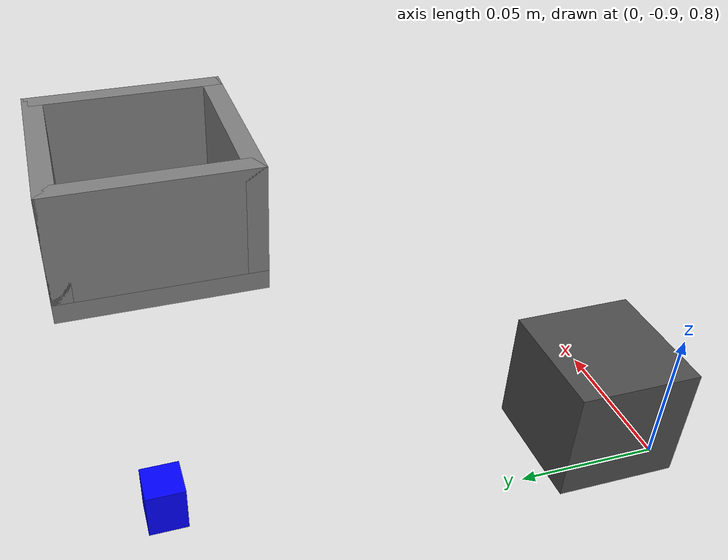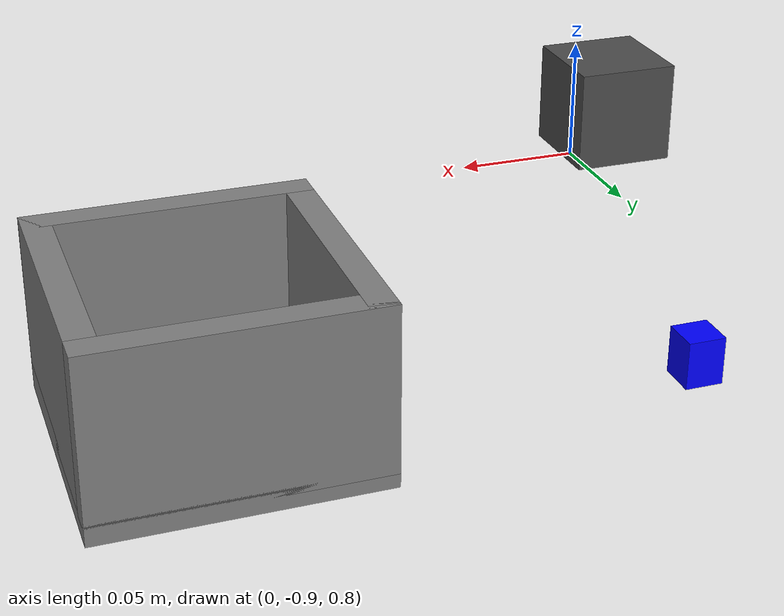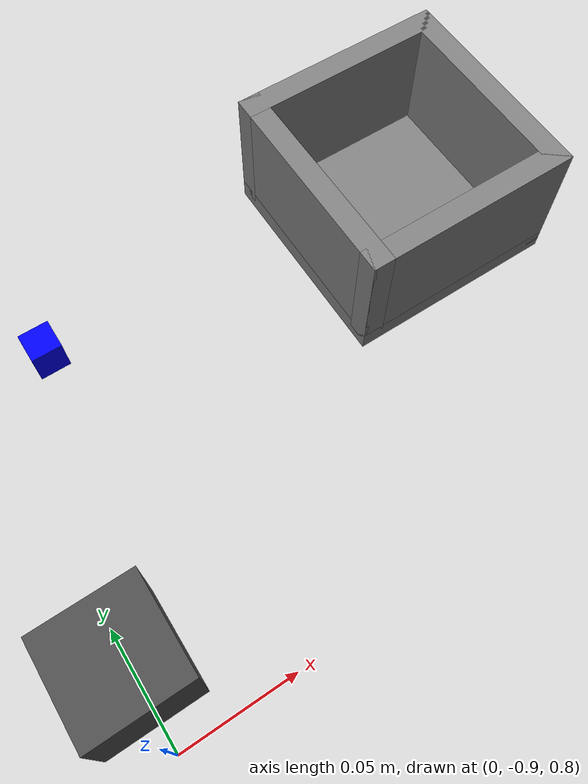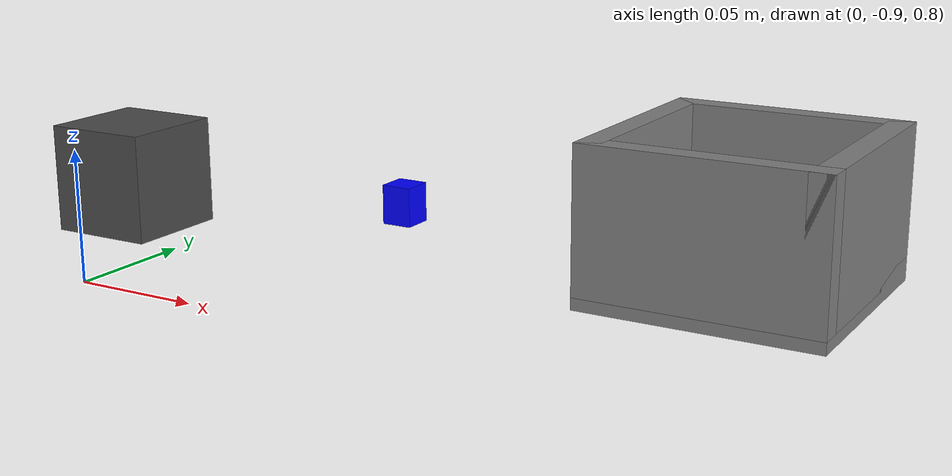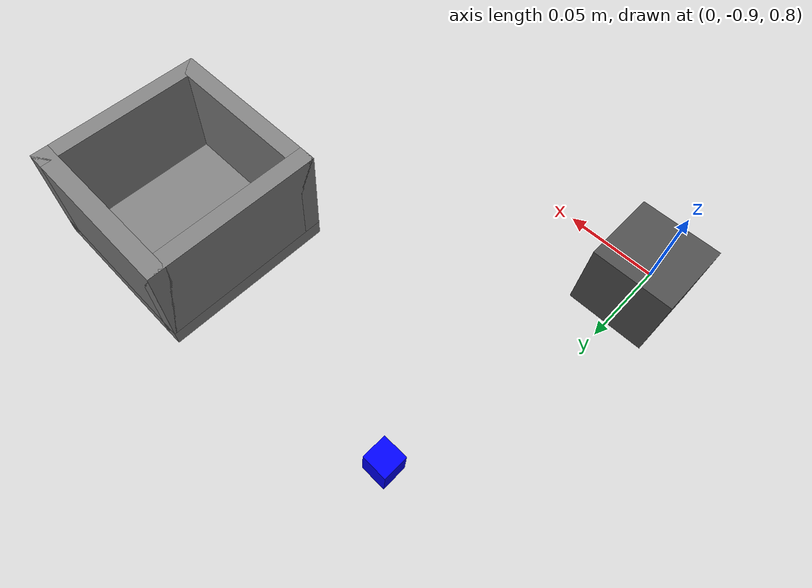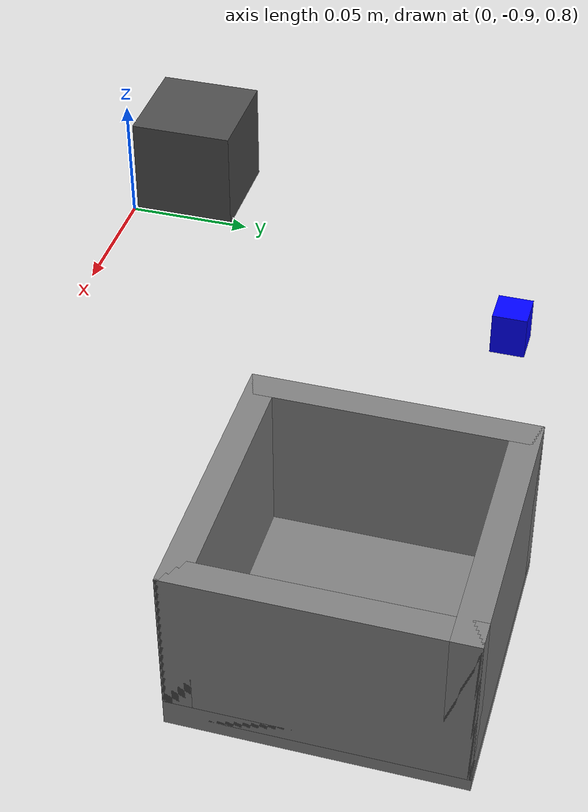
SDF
<sdf version="1.6">
 <world name="default">
  <plugin name="gazebo_ros" filename="libgazebo_ros_init.so"><ros><namespace>/</namespace></ros></plugin>
  <plugin name="gazebo_ros_state" filename="libgazebo_ros_state.so">
   <ros><namespace>/gazebo</namespace></ros>
  </plugin>
  <include><uri>model://ground_plane</uri></include>
  <include><uri>model://sun</uri></include>
  <model name="blue_cube">
   <static>false</static>
   <link name="blue_cube_link">
    <pose>0.03 -0.73 0.795 0 0 0</pose>
    <inertial><mass>0.05</mass></inertial>
    <collision name="collision">
     <geometry><box><size>0.014 0.014 0.018</size></box></geometry>
     <surface><friction><ode><mu>1.2</mu><mu2>1.2</mu2></ode></friction></surface>
    </collision>
    <visual name="visual">
     <geometry><box><size>0.014 0.014 0.018</size></box></geometry>
     <material><ambient>0 0 1 1</ambient><diffuse>0 0 1 1</diffuse></material>
    </visual>
   </link>
  </model>
  <model name="grey_box">
   <pose>0.20 -0.75 0.790 0 0 0</pose>
   <static>true</static>
   <link name="bottom">
    <collision name="collision"><geometry><box><size>0.1 0.1 0.01</size></box></geometry></collision>
    <visual name="visual">
     <geometry><box><size>0.1 0.1 0.01</size></box></geometry>
     <material><ambient>0.5 0.5 0.5 1</ambient><diffuse>0.5 0.5 0.5 1</diffuse></material>
    </visual>
   </link>
   <link name="wall1">
    <pose>0 0.045 0.03 0 0 0</pose>
    <collision name="collision"><geometry><box><size>0.1 0.01 0.06</size></box></geometry></collision>
    <visual name="visual">
     <geometry><box><size>0.1 0.01 0.06</size></box></geometry>
     <material><ambient>0.5 0.5 0.5 1</ambient><diffuse>0.5 0.5 0.5 1</diffuse></material>
    </visual>
   </link>
   <link name="wall2">
    <pose>0 -0.045 0.03 0 0 0</pose>
    <collision name="collision"><geometry><box><size>0.1 0.01 0.06</size></box></geometry></collision>
    <visual name="visual">
     <geometry><box><size>0.1 0.01 0.06</size></box></geometry>
     <material><ambient>0.5 0.5 0.5 1</ambient><diffuse>0.5 0.5 0.5 1</diffuse></material>
    </visual>
   </link>
   <link name="wall3">
    <pose>0.045 0 0.03 0 0 0</pose>
    <collision name="collision"><geometry><box><size>0.01 0.1 0.06</size></box></geometry></collision>
    <visual name="visual">
     <geometry><box><size>0.01 0.1 0.06</size></box></geometry>
     <material><ambient>0.5 0.5 0.5 1</ambient><diffuse>0.5 0.5 0.5 1</diffuse></material>
    </visual>
   </link>
   <link name="wall4">
    <pose>-0.045 0 0.03 0 0 0</pose>
    <collision name="collision"><geometry><box><size>0.01 0.1 0.06</size></box></geometry></collision>
    <visual name="visual">
     <geometry><box><size>0.01 0.1 0.06</size></box></geometry>
     <material><ambient>0.5 0.5 0.5 1</ambient><diffuse>0.5 0.5 0.5 1</diffuse></material>
    </visual>
   </link>
   <joint name="wall1_joint" type="fixed"><parent>bottom</parent><child>wall1</child></joint>
   <joint name="wall2_joint" type="fixed"><parent>bottom</parent><child>wall2</child></joint>
   <joint name="wall3_joint" type="fixed"><parent>bottom</parent><child>wall3</child></joint>
   <joint name="wall4_joint" type="fixed"><parent>bottom</parent><child>wall4</child></joint>
  </model>
  <model name="front_env_camera">
   <static>true</static>
   <pose>0 -0.87 0.835 0 0 1.5708</pose>
   <link name="front_camera_link">
    <inertial><mass>0.001</mass></inertial>
    <collision name="collision"><geometry><box><size>0.01 0.01 0.01</size></box></geometry></collision>
    <visual name="visual">
     <geometry><box><size>0.04 0.04 0.04</size></box></geometry>
     <material>
      <ambient>0.3 0.3 0.3 1</ambient>
      <diffuse>0.3 0.3 0.3 1</diffuse>
      <transparency>1.0</transparency>
     </material>
    </visual>
    <sensor name="front_rgb" type="camera">
     <always_on>1</always_on>
     <update_rate>30</update_rate>
     <visualize>true</visualize>
     <camera name="camera">
      <horizontal_fov>1.5708</horizontal_fov>
      <image><width>1280</width><height>720</height><format>R8G8B8</format></image>
      <clip><near>0.05</near><far>50</far></clip>
     </camera>
     <plugin name="front_rgb_controller" filename="libgazebo_ros_camera.so">
      <ros><namespace>/front_camera</namespace></ros>
      <camera_name>front_camera</camera_name>
      <frame_name>front_camera_optical_frame</frame_name>
     </plugin>
    </sensor>
   </link>
  </model>
 </world>
</sdf>
